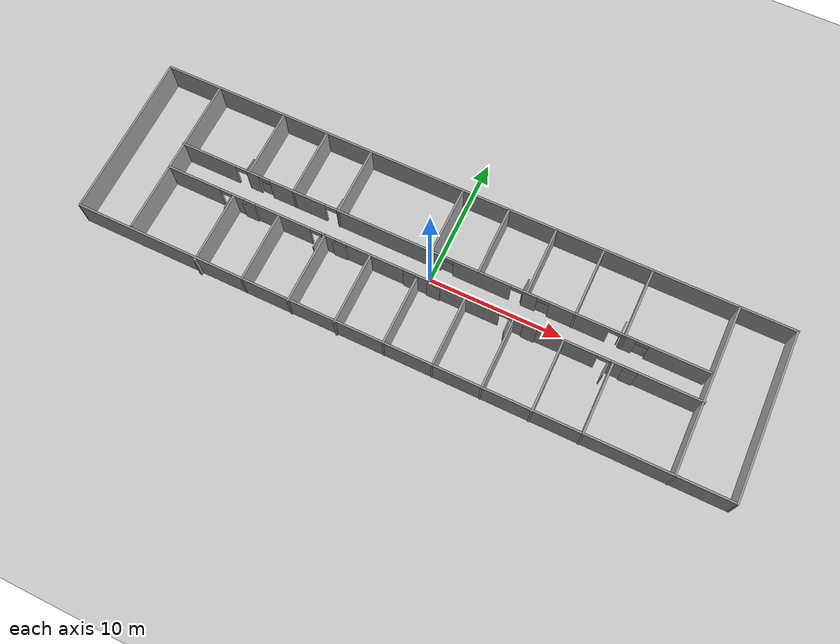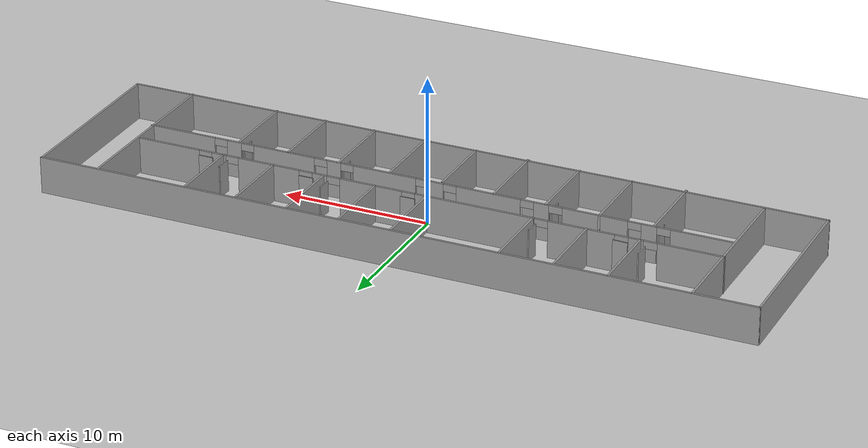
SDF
<sdf version="1.6">
 <world name="default">
  <light name="sun" type="directional">
   <cast_shadows>0</cast_shadows>
   <pose>0 0 10 0 -0 0</pose>
   <diffuse>0.8 0.8 0.8 1</diffuse>
   <specular>0.1 0.1 0.1 1</specular>
   <attenuation>
    <range>1000</range>
    <constant>0.9</constant>
    <linear>0.01</linear>
    <quadratic>0.001</quadratic>
   </attenuation>
   <direction>-0.5 0.5 -1</direction>
  </light>
  <model name="ground_plane">
   <static>1</static>
   <link name="link">
    <collision name="collision">
     <geometry><plane><normal>0 0 1</normal><size>100 100</size></plane></geometry>
     <surface><friction><ode><mu>100</mu><mu2>50</mu2></ode></friction></surface>
    </collision>
    <visual name="visual">
     <cast_shadows>0</cast_shadows>
     <geometry><plane><normal>0 0 1</normal><size>100 100</size></plane></geometry>
     <material>
      <script><uri>file://media/materials/scripts/gazebo.material</uri><name>Gazebo/Grey</name></script>
     </material>
    </visual>
   </link>
  </model>
  <gravity>0 0 -9.8</gravity>
  <magnetic_field>6e-06 2.3e-05 -4.2e-05</magnetic_field>
  <atmosphere type="adiabatic"/>
  <physics name="default_physics" default="0" type="ode">
   <max_step_size>0.001</max_step_size>
   <real_time_factor>1</real_time_factor>
   <real_time_update_rate>1000</real_time_update_rate>
  </physics>
  <scene><ambient>0.4 0.4 0.4 1</ambient><background>0.7 0.7 0.7 1</background><shadows>0</shadows></scene>
  <spherical_coordinates>
   <surface_model>EARTH_WGS84</surface_model>
   <latitude_deg>0</latitude_deg>
   <longitude_deg>0</longitude_deg>
   <elevation>0</elevation>
   <heading_deg>0</heading_deg>
  </spherical_coordinates>
  <model name="verdieping_v1">
   <pose>0.00297 -0.12364 0 0 -0 0</pose>
   <link name="Wall_11">
    <collision name="Wall_11_Collision">
     <geometry><box><size>48.75 0.15 2.5</size></box></geometry>
     <pose>0 0 1.25 0 -0 0</pose>
    </collision>
    <visual name="Wall_11_Visual">
     <pose>0 0 1.25 0 -0 0</pose>
     <geometry><box><size>48.75 0.15 2.5</size></box></geometry>
     <material>
      <script><uri>file://media/materials/scripts/gazebo.material</uri><name>Gazebo/Grey</name></script>
      <ambient>1 1 1 1</ambient>
     </material>
    </visual>
    <pose>-0.020228 6.39198 0 0 -0 0</pose>
   </link>
   <link name="Wall_12">
    <collision name="Wall_12_Collision">
     <geometry><box><size>12.7101 0.15 2.5</size></box></geometry>
     <pose>0 0 1.25 0 -0 0</pose>
    </collision>
    <visual name="Wall_12_Visual">
     <pose>0 0 1.25 0 -0 0</pose>
     <geometry><box><size>12.7101 0.15 2.5</size></box></geometry>
     <material>
      <script><uri>file://media/materials/scripts/gazebo.material</uri><name>Gazebo/Grey</name></script>
      <ambient>1 1 1 1</ambient>
     </material>
    </visual>
    <pose>24.3 0.071753 0 0 0 -1.56113</pose>
   </link>
   <link name="Wall_14">
    <collision name="Wall_14_Collision">
     <geometry><box><size>48.75 0.15 2.5</size></box></geometry>
     <pose>0 0 1.25 0 -0 0</pose>
    </collision>
    <visual name="Wall_14_Visual">
     <pose>0 0 1.25 0 -0 0</pose>
     <geometry><box><size>48.75 0.15 2.5</size></box></geometry>
     <material>
      <script><uri>file://media/materials/scripts/gazebo.material</uri><name>Gazebo/Grey</name></script>
      <ambient>1 1 1 1</ambient>
     </material>
    </visual>
    <pose>0.060683 -6.20802 0 0 -0 3.14159</pose>
   </link>
   <link name="Wall_15">
    <collision name="Wall_15_Collision">
     <geometry><box><size>12.7101 0.15 2.5</size></box></geometry>
     <pose>0 0 1.25 0 -0 0</pose>
    </collision>
    <visual name="Wall_15_Visual">
     <pose>0 0 1.25 0 -0 0</pose>
     <geometry><box><size>12.7101 0.15 2.5</size></box></geometry>
     <material>
      <script><uri>file://media/materials/scripts/gazebo.material</uri><name>Gazebo/Grey</name></script>
      <ambient>1 1 1 1</ambient>
     </material>
    </visual>
    <pose>-24.3 0.071753 0 0 -0 1.58046</pose>
   </link>
   <link name="Wall_17">
    <collision name="Wall_17_Collision">
     <geometry><box><size>12.5 0.15 2.5</size></box></geometry>
     <pose>0 0 1.25 0 -0 0</pose>
    </collision>
    <visual name="Wall_17_Visual">
     <pose>0 0 1.25 0 -0 0</pose>
     <geometry><box><size>12.5 0.15 2.5</size></box></geometry>
     <material>
      <script><uri>file://media/materials/scripts/gazebo.material</uri><name>Gazebo/Grey</name></script>
      <ambient>1 1 1 1</ambient>
     </material>
    </visual>
    <pose>-20.1128 0.176526 0 0 0 -1.5708</pose>
   </link>
   <link name="Wall_19">
    <collision name="Wall_19_Collision">
     <geometry><box><size>12.75 0.15 2.5</size></box></geometry>
     <pose>0 0 1.25 0 -0 0</pose>
    </collision>
    <visual name="Wall_19_Visual">
     <pose>0 0 1.25 0 -0 0</pose>
     <geometry><box><size>12.75 0.15 2.5</size></box></geometry>
     <material>
      <script><uri>file://media/materials/scripts/gazebo.material</uri><name>Gazebo/Grey</name></script>
      <ambient>1 1 1 1</ambient>
     </material>
    </visual>
    <pose>20.1809 0.051526 0 0 0 -1.5708</pose>
   </link>
   <link name="Wall_21">
    <pose>-0.103304 1.17321 0 0 -0 0</pose>
    <visual name="Wall_21_Visual_0">
     <pose>-17.9477 0 1.25 0 -0 0</pose>
     <geometry><box><size>4.35455 0.15 2.5</size></box></geometry>
     <material>
      <script><uri>file://media/materials/scripts/gazebo.material</uri><name>Gazebo/Grey</name></script>
      <ambient>1 1 1 1</ambient>
     </material>
    </visual>
    <collision name="Wall_21_Collision_0">
     <geometry><box><size>4.35455 0.15 2.5</size></box></geometry>
     <pose>-17.9477 0 1.25 0 -0 0</pose>
    </collision>
    <visual name="Wall_21_Visual_1">
     <pose>-14.3722 0 1.25 0 -0 0</pose>
     <geometry><box><size>0.996594 0.15 2.5</size></box></geometry>
     <material>
      <script><uri>file://media/materials/scripts/gazebo.material</uri><name>Gazebo/Grey</name></script>
      <ambient>1 1 1 1</ambient>
     </material>
    </visual>
    <collision name="Wall_21_Collision_1">
     <geometry><box><size>0.996594 0.15 2.5</size></box></geometry>
     <pose>-14.3722 0 1.25 0 -0 0</pose>
    </collision>
    <visual name="Wall_21_Visual_2">
     <pose>-10.7625 0 1.25 0 -0 0</pose>
     <geometry><box><size>4.4227 0.15 2.5</size></box></geometry>
     <material>
      <script><uri>file://media/materials/scripts/gazebo.material</uri><name>Gazebo/Grey</name></script>
      <ambient>1 1 1 1</ambient>
     </material>
    </visual>
    <collision name="Wall_21_Collision_2">
     <geometry><box><size>4.4227 0.15 2.5</size></box></geometry>
     <pose>-10.7625 0 1.25 0 -0 0</pose>
    </collision>
    <visual name="Wall_21_Visual_3">
     <pose>-3.5738 0 1.25 0 -0 0</pose>
     <geometry><box><size>8.15471 0.15 2.5</size></box></geometry>
     <material>
      <script><uri>file://media/materials/scripts/gazebo.material</uri><name>Gazebo/Grey</name></script>
      <ambient>1 1 1 1</ambient>
     </material>
    </visual>
    <collision name="Wall_21_Collision_3">
     <geometry><box><size>8.15471 0.15 2.5</size></box></geometry>
     <pose>-3.5738 0 1.25 0 -0 0</pose>
    </collision>
    <visual name="Wall_21_Visual_4">
     <pose>3.55372 0 1.25 0 -0 0</pose>
     <geometry><box><size>4.30034 0.15 2.5</size></box></geometry>
     <material>
      <script><uri>file://media/materials/scripts/gazebo.material</uri><name>Gazebo/Grey</name></script>
      <ambient>1 1 1 1</ambient>
     </material>
    </visual>
    <collision name="Wall_21_Collision_4">
     <geometry><box><size>4.30034 0.15 2.5</size></box></geometry>
     <pose>3.55372 0 1.25 0 -0 0</pose>
    </collision>
    <visual name="Wall_21_Visual_5">
     <pose>7.13278 0 1.25 0 -0 0</pose>
     <geometry><box><size>1.05777 0.15 2.5</size></box></geometry>
     <material>
      <script><uri>file://media/materials/scripts/gazebo.material</uri><name>Gazebo/Grey</name></script>
      <ambient>1 1 1 1</ambient>
     </material>
    </visual>
    <collision name="Wall_21_Collision_5">
     <geometry><box><size>1.05777 0.15 2.5</size></box></geometry>
     <pose>7.13278 0 1.25 0 -0 0</pose>
    </collision>
    <visual name="Wall_21_Visual_6">
     <pose>10.7424 0 1.25 0 -0 0</pose>
     <geometry><box><size>4.36152 0.15 2.5</size></box></geometry>
     <material>
      <script><uri>file://media/materials/scripts/gazebo.material</uri><name>Gazebo/Grey</name></script>
      <ambient>1 1 1 1</ambient>
     </material>
    </visual>
    <collision name="Wall_21_Collision_6">
     <geometry><box><size>4.36152 0.15 2.5</size></box></geometry>
     <pose>10.7424 0 1.25 0 -0 0</pose>
    </collision>
    <visual name="Wall_21_Visual_7">
     <pose>14.3368 0 1.25 0 -0 0</pose>
     <geometry><box><size>1.02718 0.15 2.5</size></box></geometry>
     <material>
      <script><uri>file://media/materials/scripts/gazebo.material</uri><name>Gazebo/Grey</name></script>
      <ambient>1 1 1 1</ambient>
     </material>
    </visual>
    <collision name="Wall_21_Collision_7">
     <geometry><box><size>1.02718 0.15 2.5</size></box></geometry>
     <pose>14.3368 0 1.25 0 -0 0</pose>
    </collision>
    <visual name="Wall_21_Visual_8">
     <pose>17.9377 0 1.25 0 -0 0</pose>
     <geometry><box><size>4.37463 0.15 2.5</size></box></geometry>
     <material>
      <script><uri>file://media/materials/scripts/gazebo.material</uri><name>Gazebo/Grey</name></script>
      <ambient>1 1 1 1</ambient>
     </material>
    </visual>
    <collision name="Wall_21_Collision_8">
     <geometry><box><size>4.37463 0.15 2.5</size></box></geometry>
     <pose>17.9377 0 1.25 0 -0 0</pose>
    </collision>
    <visual name="Wall_21_Visual_9">
     <pose>-15.3204 0 2.25 0 -0 0</pose>
     <geometry><box><size>0.9 0.15 0.5</size></box></geometry>
     <material>
      <script><uri>file://media/materials/scripts/gazebo.material</uri><name>Gazebo/Grey</name></script>
      <ambient>1 1 1 1</ambient>
     </material>
    </visual>
    <collision name="Wall_21_Collision_9">
     <geometry><box><size>0.9 0.15 0.5</size></box></geometry>
     <pose>-15.3204 0 2.25 0 -0 0</pose>
    </collision>
    <visual name="Wall_21_Visual_10">
     <pose>-13.4239 0 2.25 0 -0 0</pose>
     <geometry><box><size>0.9 0.15 0.5</size></box></geometry>
     <material>
      <script><uri>file://media/materials/scripts/gazebo.material</uri><name>Gazebo/Grey</name></script>
      <ambient>1 1 1 1</ambient>
     </material>
    </visual>
    <collision name="Wall_21_Collision_10">
     <geometry><box><size>0.9 0.15 0.5</size></box></geometry>
     <pose>-13.4239 0 2.25 0 -0 0</pose>
    </collision>
    <visual name="Wall_21_Visual_11">
     <pose>-8.10116 0 2.25 0 -0 0</pose>
     <geometry><box><size>0.9 0.15 0.5</size></box></geometry>
     <material>
      <script><uri>file://media/materials/scripts/gazebo.material</uri><name>Gazebo/Grey</name></script>
      <ambient>1 1 1 1</ambient>
     </material>
    </visual>
    <collision name="Wall_21_Collision_11">
     <geometry><box><size>0.9 0.15 0.5</size></box></geometry>
     <pose>-8.10116 0 2.25 0 -0 0</pose>
    </collision>
    <visual name="Wall_21_Visual_12">
     <pose>0.953552 0 2.25 0 -0 0</pose>
     <geometry><box><size>0.9 0.15 0.5</size></box></geometry>
     <material>
      <script><uri>file://media/materials/scripts/gazebo.material</uri><name>Gazebo/Grey</name></script>
      <ambient>1 1 1 1</ambient>
     </material>
    </visual>
    <collision name="Wall_21_Collision_12">
     <geometry><box><size>0.9 0.15 0.5</size></box></geometry>
     <pose>0.953552 0 2.25 0 -0 0</pose>
    </collision>
    <visual name="Wall_21_Visual_13">
     <pose>6.15389 0 2.25 0 -0 0</pose>
     <geometry><box><size>0.9 0.15 0.5</size></box></geometry>
     <material>
      <script><uri>file://media/materials/scripts/gazebo.material</uri><name>Gazebo/Grey</name></script>
      <ambient>1 1 1 1</ambient>
     </material>
    </visual>
    <collision name="Wall_21_Collision_13">
     <geometry><box><size>0.9 0.15 0.5</size></box></geometry>
     <pose>6.15389 0 2.25 0 -0 0</pose>
    </collision>
    <visual name="Wall_21_Visual_14">
     <pose>8.11167 0 2.25 0 -0 0</pose>
     <geometry><box><size>0.9 0.15 0.5</size></box></geometry>
     <material>
      <script><uri>file://media/materials/scripts/gazebo.material</uri><name>Gazebo/Grey</name></script>
      <ambient>1 1 1 1</ambient>
     </material>
    </visual>
    <collision name="Wall_21_Collision_14">
     <geometry><box><size>0.9 0.15 0.5</size></box></geometry>
     <pose>8.11167 0 2.25 0 -0 0</pose>
    </collision>
    <visual name="Wall_21_Visual_15">
     <pose>13.3732 0 2.25 0 -0 0</pose>
     <geometry><box><size>0.9 0.15 0.5</size></box></geometry>
     <material>
      <script><uri>file://media/materials/scripts/gazebo.material</uri><name>Gazebo/Grey</name></script>
      <ambient>1 1 1 1</ambient>
     </material>
    </visual>
    <collision name="Wall_21_Collision_15">
     <geometry><box><size>0.9 0.15 0.5</size></box></geometry>
     <pose>13.3732 0 2.25 0 -0 0</pose>
    </collision>
    <visual name="Wall_21_Visual_16">
     <pose>15.3004 0 2.25 0 -0 0</pose>
     <geometry><box><size>0.9 0.15 0.5</size></box></geometry>
     <material>
      <script><uri>file://media/materials/scripts/gazebo.material</uri><name>Gazebo/Grey</name></script>
      <ambient>1 1 1 1</ambient>
     </material>
    </visual>
    <collision name="Wall_21_Collision_16">
     <geometry><box><size>0.9 0.15 0.5</size></box></geometry>
     <pose>15.3004 0 2.25 0 -0 0</pose>
    </collision>
   </link>
   <link name="Wall_23">
    <pose>0.086818 -0.890023 0 0 -0 3.14159</pose>
    <visual name="Wall_23_Visual_0">
     <pose>-17.8898 0 1.25 0 -0 0</pose>
     <geometry><box><size>4.72034 0.15 2.5</size></box></geometry>
     <material>
      <script><uri>file://media/materials/scripts/gazebo.material</uri><name>Gazebo/Grey</name></script>
      <ambient>1 1 1 1</ambient>
     </material>
    </visual>
    <collision name="Wall_23_Collision_0">
     <geometry><box><size>4.72034 0.15 2.5</size></box></geometry>
     <pose>-17.8898 0 1.25 0 -0 0</pose>
    </collision>
    <visual name="Wall_23_Visual_1">
     <pose>-14.1161 0 1.25 0 -0 0</pose>
     <geometry><box><size>1.02719 0.15 2.5</size></box></geometry>
     <material>
      <script><uri>file://media/materials/scripts/gazebo.material</uri><name>Gazebo/Grey</name></script>
      <ambient>1 1 1 1</ambient>
     </material>
    </visual>
    <collision name="Wall_23_Collision_1">
     <geometry><box><size>1.02719 0.15 2.5</size></box></geometry>
     <pose>-14.1161 0 1.25 0 -0 0</pose>
    </collision>
    <visual name="Wall_23_Visual_2">
     <pose>-10.5217 0 1.25 0 -0 0</pose>
     <geometry><box><size>4.36152 0.15 2.5</size></box></geometry>
     <material>
      <script><uri>file://media/materials/scripts/gazebo.material</uri><name>Gazebo/Grey</name></script>
      <ambient>1 1 1 1</ambient>
     </material>
    </visual>
    <collision name="Wall_23_Collision_2">
     <geometry><box><size>4.36152 0.15 2.5</size></box></geometry>
     <pose>-10.5217 0 1.25 0 -0 0</pose>
    </collision>
    <visual name="Wall_23_Visual_3">
     <pose>-6.95795 0 1.25 0 -0 0</pose>
     <geometry><box><size>0.966004 0.15 2.5</size></box></geometry>
     <material>
      <script><uri>file://media/materials/scripts/gazebo.material</uri><name>Gazebo/Grey</name></script>
      <ambient>1 1 1 1</ambient>
     </material>
    </visual>
    <collision name="Wall_23_Collision_3">
     <geometry><box><size>0.966004 0.15 2.5</size></box></geometry>
     <pose>-6.95795 0 1.25 0 -0 0</pose>
    </collision>
    <visual name="Wall_23_Visual_4">
     <pose>-3.37889 0 1.25 0 -0 0</pose>
     <geometry><box><size>4.39211 0.15 2.5</size></box></geometry>
     <material>
      <script><uri>file://media/materials/scripts/gazebo.material</uri><name>Gazebo/Grey</name></script>
      <ambient>1 1 1 1</ambient>
     </material>
    </visual>
    <collision name="Wall_23_Collision_4">
     <geometry><box><size>4.39211 0.15 2.5</size></box></geometry>
     <pose>-3.37889 0 1.25 0 -0 0</pose>
    </collision>
    <visual name="Wall_23_Visual_5">
     <pose>0.215457 0 1.25 0 -0 0</pose>
     <geometry><box><size>0.996594 0.15 2.5</size></box></geometry>
     <material>
      <script><uri>file://media/materials/scripts/gazebo.material</uri><name>Gazebo/Grey</name></script>
      <ambient>1 1 1 1</ambient>
     </material>
    </visual>
    <collision name="Wall_23_Collision_5">
     <geometry><box><size>0.996594 0.15 2.5</size></box></geometry>
     <pose>0.215457 0 1.25 0 -0 0</pose>
    </collision>
    <visual name="Wall_23_Visual_6">
     <pose>3.80981 0 1.25 0 -0 0</pose>
     <geometry><box><size>4.39211 0.15 2.5</size></box></geometry>
     <material>
      <script><uri>file://media/materials/scripts/gazebo.material</uri><name>Gazebo/Grey</name></script>
      <ambient>1 1 1 1</ambient>
     </material>
    </visual>
    <collision name="Wall_23_Collision_6">
     <geometry><box><size>4.39211 0.15 2.5</size></box></geometry>
     <pose>3.80981 0 1.25 0 -0 0</pose>
    </collision>
    <visual name="Wall_23_Visual_7">
     <pose>7.41946 0 1.25 0 -0 0</pose>
     <geometry><box><size>1.02719 0.15 2.5</size></box></geometry>
     <material>
      <script><uri>file://media/materials/scripts/gazebo.material</uri><name>Gazebo/Grey</name></script>
      <ambient>1 1 1 1</ambient>
     </material>
    </visual>
    <collision name="Wall_23_Collision_7">
     <geometry><box><size>1.02719 0.15 2.5</size></box></geometry>
     <pose>7.41946 0 1.25 0 -0 0</pose>
    </collision>
    <visual name="Wall_23_Visual_8">
     <pose>11.0138 0 1.25 0 -0 0</pose>
     <geometry><box><size>4.36152 0.15 2.5</size></box></geometry>
     <material>
      <script><uri>file://media/materials/scripts/gazebo.material</uri><name>Gazebo/Grey</name></script>
      <ambient>1 1 1 1</ambient>
     </material>
    </visual>
    <collision name="Wall_23_Collision_8">
     <geometry><box><size>4.36152 0.15 2.5</size></box></geometry>
     <pose>11.0138 0 1.25 0 -0 0</pose>
    </collision>
    <visual name="Wall_23_Visual_9">
     <pose>14.6082 0 1.25 0 -0 0</pose>
     <geometry><box><size>1.02718 0.15 2.5</size></box></geometry>
     <material>
      <script><uri>file://media/materials/scripts/gazebo.material</uri><name>Gazebo/Grey</name></script>
      <ambient>1 1 1 1</ambient>
     </material>
    </visual>
    <collision name="Wall_23_Collision_9">
     <geometry><box><size>1.02718 0.15 2.5</size></box></geometry>
     <pose>14.6082 0 1.25 0 -0 0</pose>
    </collision>
    <visual name="Wall_23_Visual_10">
     <pose>18.1359 0 1.25 0 -0 0</pose>
     <geometry><box><size>4.22825 0.15 2.5</size></box></geometry>
     <material>
      <script><uri>file://media/materials/scripts/gazebo.material</uri><name>Gazebo/Grey</name></script>
      <ambient>1 1 1 1</ambient>
     </material>
    </visual>
    <collision name="Wall_23_Collision_10">
     <geometry><box><size>4.22825 0.15 2.5</size></box></geometry>
     <pose>18.1359 0 1.25 0 -0 0</pose>
    </collision>
    <visual name="Wall_23_Visual_11">
     <pose>-15.0797 0 2.25 0 -0 0</pose>
     <geometry><box><size>0.9 0.15 0.5</size></box></geometry>
     <material>
      <script><uri>file://media/materials/scripts/gazebo.material</uri><name>Gazebo/Grey</name></script>
      <ambient>1 1 1 1</ambient>
     </material>
    </visual>
    <collision name="Wall_23_Collision_11">
     <geometry><box><size>0.9 0.15 0.5</size></box></geometry>
     <pose>-15.0797 0 2.25 0 -0 0</pose>
    </collision>
    <visual name="Wall_23_Visual_12">
     <pose>-13.1525 0 2.25 0 -0 0</pose>
     <geometry><box><size>0.9 0.15 0.5</size></box></geometry>
     <material>
      <script><uri>file://media/materials/scripts/gazebo.material</uri><name>Gazebo/Grey</name></script>
      <ambient>1 1 1 1</ambient>
     </material>
    </visual>
    <collision name="Wall_23_Collision_12">
     <geometry><box><size>0.9 0.15 0.5</size></box></geometry>
     <pose>-13.1525 0 2.25 0 -0 0</pose>
    </collision>
    <visual name="Wall_23_Visual_13">
     <pose>-7.89095 0 2.25 0 -0 0</pose>
     <geometry><box><size>0.9 0.15 0.5</size></box></geometry>
     <material>
      <script><uri>file://media/materials/scripts/gazebo.material</uri><name>Gazebo/Grey</name></script>
      <ambient>1 1 1 1</ambient>
     </material>
    </visual>
    <collision name="Wall_23_Collision_13">
     <geometry><box><size>0.9 0.15 0.5</size></box></geometry>
     <pose>-7.89095 0 2.25 0 -0 0</pose>
    </collision>
    <visual name="Wall_23_Visual_14">
     <pose>-6.02495 0 2.25 0 -0 0</pose>
     <geometry><box><size>0.9 0.15 0.5</size></box></geometry>
     <material>
      <script><uri>file://media/materials/scripts/gazebo.material</uri><name>Gazebo/Grey</name></script>
      <ambient>1 1 1 1</ambient>
     </material>
    </visual>
    <collision name="Wall_23_Collision_14">
     <geometry><box><size>0.9 0.15 0.5</size></box></geometry>
     <pose>-6.02495 0 2.25 0 -0 0</pose>
    </collision>
    <visual name="Wall_23_Visual_15">
     <pose>-0.73284 0 2.25 0 -0 0</pose>
     <geometry><box><size>0.9 0.15 0.5</size></box></geometry>
     <material>
      <script><uri>file://media/materials/scripts/gazebo.material</uri><name>Gazebo/Grey</name></script>
      <ambient>1 1 1 1</ambient>
     </material>
    </visual>
    <collision name="Wall_23_Collision_15">
     <geometry><box><size>0.9 0.15 0.5</size></box></geometry>
     <pose>-0.73284 0 2.25 0 -0 0</pose>
    </collision>
    <visual name="Wall_23_Visual_16">
     <pose>1.16375 0 2.25 0 -0 0</pose>
     <geometry><box><size>0.9 0.15 0.5</size></box></geometry>
     <material>
      <script><uri>file://media/materials/scripts/gazebo.material</uri><name>Gazebo/Grey</name></script>
      <ambient>1 1 1 1</ambient>
     </material>
    </visual>
    <collision name="Wall_23_Collision_16">
     <geometry><box><size>0.9 0.15 0.5</size></box></geometry>
     <pose>1.16375 0 2.25 0 -0 0</pose>
    </collision>
    <visual name="Wall_23_Visual_17">
     <pose>6.45586 0 2.25 0 -0 0</pose>
     <geometry><box><size>0.9 0.15 0.5</size></box></geometry>
     <material>
      <script><uri>file://media/materials/scripts/gazebo.material</uri><name>Gazebo/Grey</name></script>
      <ambient>1 1 1 1</ambient>
     </material>
    </visual>
    <collision name="Wall_23_Collision_17">
     <geometry><box><size>0.9 0.15 0.5</size></box></geometry>
     <pose>6.45586 0 2.25 0 -0 0</pose>
    </collision>
    <visual name="Wall_23_Visual_18">
     <pose>8.38305 0 2.25 0 -0 0</pose>
     <geometry><box><size>0.9 0.15 0.5</size></box></geometry>
     <material>
      <script><uri>file://media/materials/scripts/gazebo.material</uri><name>Gazebo/Grey</name></script>
      <ambient>1 1 1 1</ambient>
     </material>
    </visual>
    <collision name="Wall_23_Collision_18">
     <geometry><box><size>0.9 0.15 0.5</size></box></geometry>
     <pose>8.38305 0 2.25 0 -0 0</pose>
    </collision>
    <visual name="Wall_23_Visual_19">
     <pose>13.6446 0 2.25 0 -0 0</pose>
     <geometry><box><size>0.9 0.15 0.5</size></box></geometry>
     <material>
      <script><uri>file://media/materials/scripts/gazebo.material</uri><name>Gazebo/Grey</name></script>
      <ambient>1 1 1 1</ambient>
     </material>
    </visual>
    <collision name="Wall_23_Collision_19">
     <geometry><box><size>0.9 0.15 0.5</size></box></geometry>
     <pose>13.6446 0 2.25 0 -0 0</pose>
    </collision>
    <visual name="Wall_23_Visual_20">
     <pose>15.5718 0 2.25 0 -0 0</pose>
     <geometry><box><size>0.9 0.15 0.5</size></box></geometry>
     <material>
      <script><uri>file://media/materials/scripts/gazebo.material</uri><name>Gazebo/Grey</name></script>
      <ambient>1 1 1 1</ambient>
     </material>
    </visual>
    <collision name="Wall_23_Collision_20">
     <geometry><box><size>0.9 0.15 0.5</size></box></geometry>
     <pose>15.5718 0 2.25 0 -0 0</pose>
    </collision>
   </link>
   <link name="Wall_25">
    <collision name="Wall_25_Collision">
     <geometry><box><size>5.5 0.15 2.5</size></box></geometry>
     <pose>0 0 1.25 0 -0 0</pose>
    </collision>
    <visual name="Wall_25_Visual">
     <pose>0 0 1.25 0 -0 0</pose>
     <geometry><box><size>5.5 0.15 2.5</size></box></geometry>
     <material>
      <script><uri>file://media/materials/scripts/gazebo.material</uri><name>Gazebo/Grey</name></script>
      <ambient>1 1 1 1</ambient>
     </material>
    </visual>
    <pose>-14.8132 -3.71698 0 0 -0 1.5708</pose>
   </link>
   <link name="Wall_27">
    <collision name="Wall_27_Collision">
     <geometry><box><size>5.5 0.15 2.5</size></box></geometry>
     <pose>0 0 1.25 0 -0 0</pose>
    </collision>
    <visual name="Wall_27_Visual">
     <pose>0 0 1.25 0 -0 0</pose>
     <geometry><box><size>5.5 0.15 2.5</size></box></geometry>
     <material>
      <script><uri>file://media/materials/scripts/gazebo.material</uri><name>Gazebo/Grey</name></script>
      <ambient>1 1 1 1</ambient>
     </material>
    </visual>
    <pose>-11.2126 -3.55516 0 0 -0 1.5708</pose>
   </link>
   <link name="Wall_29">
    <collision name="Wall_29_Collision">
     <geometry><box><size>5.5 0.15 2.5</size></box></geometry>
     <pose>0 0 1.25 0 -0 0</pose>
    </collision>
    <visual name="Wall_29_Visual">
     <pose>0 0 1.25 0 -0 0</pose>
     <geometry><box><size>5.5 0.15 2.5</size></box></geometry>
     <material>
      <script><uri>file://media/materials/scripts/gazebo.material</uri><name>Gazebo/Grey</name></script>
      <ambient>1 1 1 1</ambient>
     </material>
    </visual>
    <pose>-7.61207 -3.59561 0 0 -0 1.5708</pose>
   </link>
   <link name="Wall_31">
    <collision name="Wall_31_Collision">
     <geometry><box><size>5.25 0.15 2.5</size></box></geometry>
     <pose>0 0 1.25 0 -0 0</pose>
    </collision>
    <visual name="Wall_31_Visual">
     <pose>0 0 1.25 0 -0 0</pose>
     <geometry><box><size>5.25 0.15 2.5</size></box></geometry>
     <material>
      <script><uri>file://media/materials/scripts/gazebo.material</uri><name>Gazebo/Grey</name></script>
      <ambient>1 1 1 1</ambient>
     </material>
    </visual>
    <pose>-0.451438 -3.68016 0 0 -0 1.5708</pose>
   </link>
   <link name="Wall_33">
    <collision name="Wall_33_Collision">
     <geometry><box><size>5.25 0.15 2.5</size></box></geometry>
     <pose>0 0 1.25 0 -0 0</pose>
    </collision>
    <visual name="Wall_33_Visual">
     <pose>0 0 1.25 0 -0 0</pose>
     <geometry><box><size>5.25 0.15 2.5</size></box></geometry>
     <material>
      <script><uri>file://media/materials/scripts/gazebo.material</uri><name>Gazebo/Grey</name></script>
      <ambient>1 1 1 1</ambient>
     </material>
    </visual>
    <pose>-0.451438 -3.68016 0 0 -0 1.5708</pose>
   </link>
   <link name="Wall_39">
    <collision name="Wall_39_Collision">
     <geometry><box><size>5.5 0.15 2.5</size></box></geometry>
     <pose>0 0 1.25 0 -0 0</pose>
    </collision>
    <visual name="Wall_39_Visual">
     <pose>0 0 1.25 0 -0 0</pose>
     <geometry><box><size>5.5 0.15 2.5</size></box></geometry>
     <material>
      <script><uri>file://media/materials/scripts/gazebo.material</uri><name>Gazebo/Grey</name></script>
      <ambient>1 1 1 1</ambient>
     </material>
    </visual>
    <pose>-4.05784 -3.63872 0 0 -0 1.5708</pose>
   </link>
   <link name="Wall_41">
    <collision name="Wall_41_Collision">
     <geometry><box><size>5.5 0.15 2.5</size></box></geometry>
     <pose>0 0 1.25 0 -0 0</pose>
    </collision>
    <visual name="Wall_41_Visual">
     <pose>0 0 1.25 0 -0 0</pose>
     <geometry><box><size>5.5 0.15 2.5</size></box></geometry>
     <material>
      <script><uri>file://media/materials/scripts/gazebo.material</uri><name>Gazebo/Grey</name></script>
      <ambient>1 1 1 1</ambient>
     </material>
    </visual>
    <pose>3.15647 -3.56652 0 0 0 -1.5708</pose>
   </link>
   <link name="Wall_43">
    <collision name="Wall_43_Collision">
     <geometry><box><size>5.5 0.15 2.5</size></box></geometry>
     <pose>0 0 1.25 0 -0 0</pose>
    </collision>
    <visual name="Wall_43_Visual">
     <pose>0 0 1.25 0 -0 0</pose>
     <geometry><box><size>5.5 0.15 2.5</size></box></geometry>
     <material>
      <script><uri>file://media/materials/scripts/gazebo.material</uri><name>Gazebo/Grey</name></script>
      <ambient>1 1 1 1</ambient>
     </material>
    </visual>
    <pose>6.73053 -3.56652 0 0 0 -1.5708</pose>
   </link>
   <link name="Wall_46">
    <collision name="Wall_46_Collision">
     <geometry><box><size>5.5 0.15 2.5</size></box></geometry>
     <pose>0 0 1.25 0 -0 0</pose>
    </collision>
    <visual name="Wall_46_Visual">
     <pose>0 0 1.25 0 -0 0</pose>
     <geometry><box><size>5.5 0.15 2.5</size></box></geometry>
     <material>
      <script><uri>file://media/materials/scripts/gazebo.material</uri><name>Gazebo/Grey</name></script>
      <ambient>1 1 1 1</ambient>
     </material>
    </visual>
    <pose>10.3333 -3.58804 0 0 0 -1.5708</pose>
   </link>
   <link name="Wall_49">
    <collision name="Wall_49_Collision">
     <geometry><box><size>5.5 0.15 2.5</size></box></geometry>
     <pose>0 0 1.25 0 -0 0</pose>
    </collision>
    <visual name="Wall_49_Visual">
     <pose>0 0 1.25 0 -0 0</pose>
     <geometry><box><size>5.5 0.15 2.5</size></box></geometry>
     <material>
      <script><uri>file://media/materials/scripts/gazebo.material</uri><name>Gazebo/Grey</name></script>
      <ambient>1 1 1 1</ambient>
     </material>
    </visual>
    <pose>13.9013 -3.58804 0 0 0 -1.5708</pose>
   </link>
   <link name="Wall_55">
    <collision name="Wall_55_Collision">
     <geometry><box><size>5.25 0.15 2.5</size></box></geometry>
     <pose>0 0 1.25 0 -0 0</pose>
    </collision>
    <visual name="Wall_55_Visual">
     <pose>0 0 1.25 0 -0 0</pose>
     <geometry><box><size>5.25 0.15 2.5</size></box></geometry>
     <material>
      <script><uri>file://media/materials/scripts/gazebo.material</uri><name>Gazebo/Grey</name></script>
      <ambient>1 1 1 1</ambient>
     </material>
    </visual>
    <pose>13.9365 3.714 0 0 -0 1.5708</pose>
   </link>
   <link name="Wall_57">
    <collision name="Wall_57_Collision">
     <geometry><box><size>5.25 0.15 2.5</size></box></geometry>
     <pose>0 0 1.25 0 -0 0</pose>
    </collision>
    <visual name="Wall_57_Visual">
     <pose>0 0 1.25 0 -0 0</pose>
     <geometry><box><size>5.25 0.15 2.5</size></box></geometry>
     <material>
      <script><uri>file://media/materials/scripts/gazebo.material</uri><name>Gazebo/Grey</name></script>
      <ambient>1 1 1 1</ambient>
     </material>
    </visual>
    <pose>10.3472 3.68359 0 0 -0 1.5708</pose>
   </link>
   <link name="Wall_59">
    <collision name="Wall_59_Collision">
     <geometry><box><size>5.25 0.15 2.5</size></box></geometry>
     <pose>0 0 1.25 0 -0 0</pose>
    </collision>
    <visual name="Wall_59_Visual">
     <pose>0 0 1.25 0 -0 0</pose>
     <geometry><box><size>5.25 0.15 2.5</size></box></geometry>
     <material>
      <script><uri>file://media/materials/scripts/gazebo.material</uri><name>Gazebo/Grey</name></script>
      <ambient>1 1 1 1</ambient>
     </material>
    </visual>
    <pose>6.77318 3.72921 0 0 -0 1.5708</pose>
   </link>
   <link name="Wall_63">
    <collision name="Wall_63_Collision">
     <geometry><box><size>5.25 0.15 2.5</size></box></geometry>
     <pose>0 0 1.25 0 -0 0</pose>
    </collision>
    <visual name="Wall_63_Visual">
     <pose>0 0 1.25 0 -0 0</pose>
     <geometry><box><size>5.25 0.15 2.5</size></box></geometry>
     <material>
      <script><uri>file://media/materials/scripts/gazebo.material</uri><name>Gazebo/Grey</name></script>
      <ambient>1 1 1 1</ambient>
     </material>
    </visual>
    <pose>3.1687 3.72921 0 0 -0 1.5708</pose>
   </link>
   <link name="Wall_65">
    <collision name="Wall_65_Collision">
     <geometry><box><size>5.25 0.15 2.5</size></box></geometry>
     <pose>0 0 1.25 0 -0 0</pose>
    </collision>
    <visual name="Wall_65_Visual">
     <pose>0 0 1.25 0 -0 0</pose>
     <geometry><box><size>5.25 0.15 2.5</size></box></geometry>
     <material>
      <script><uri>file://media/materials/scripts/gazebo.material</uri><name>Gazebo/Grey</name></script>
      <ambient>1 1 1 1</ambient>
     </material>
    </visual>
    <pose>-0.390145 3.6988 0 0 -0 1.5708</pose>
   </link>
   <link name="Wall_67">
    <collision name="Wall_67_Collision">
     <geometry><box><size>5.25 0.15 2.5</size></box></geometry>
     <pose>0 0 1.25 0 -0 0</pose>
    </collision>
    <visual name="Wall_67_Visual">
     <pose>0 0 1.25 0 -0 0</pose>
     <geometry><box><size>5.25 0.15 2.5</size></box></geometry>
     <material>
      <script><uri>file://media/materials/scripts/gazebo.material</uri><name>Gazebo/Grey</name></script>
      <ambient>1 1 1 1</ambient>
     </material>
    </visual>
    <pose>-7.62951 3.6988 0 0 -0 1.5708</pose>
   </link>
   <link name="Wall_69">
    <collision name="Wall_69_Collision">
     <geometry><box><size>5.25 0.15 2.5</size></box></geometry>
     <pose>0 0 1.25 0 -0 0</pose>
    </collision>
    <visual name="Wall_69_Visual">
     <pose>0 0 1.25 0 -0 0</pose>
     <geometry><box><size>5.25 0.15 2.5</size></box></geometry>
     <material>
      <script><uri>file://media/materials/scripts/gazebo.material</uri><name>Gazebo/Grey</name></script>
      <ambient>1 1 1 1</ambient>
     </material>
    </visual>
    <pose>-11.2036 3.714 0 0 -0 1.5708</pose>
   </link>
   <link name="Wall_71">
    <collision name="Wall_71_Collision">
     <geometry><box><size>5.25 0.15 2.5</size></box></geometry>
     <pose>0 0 1.25 0 -0 0</pose>
    </collision>
    <visual name="Wall_71_Visual">
     <pose>0 0 1.25 0 -0 0</pose>
     <geometry><box><size>5.25 0.15 2.5</size></box></geometry>
     <material>
      <script><uri>file://media/materials/scripts/gazebo.material</uri><name>Gazebo/Grey</name></script>
      <ambient>1 1 1 1</ambient>
     </material>
    </visual>
    <pose>-14.7472 3.77484 0 0 -0 1.5708</pose>
   </link>
   <static>1</static>
  </model>
  <model name="unit_box_0_clone_clone">
   <pose>0.775835 -1.12786 1.09503 3.14159 3e-06 -3.14149</pose>
   <link name="link">
    <inertial>
     <mass>1</mass>
     <inertia>
      <ixx>0.166667</ixx>
      <ixy>0</ixy>
      <ixz>0</ixz>
      <iyy>0.166667</iyy>
      <iyz>0</iyz>
      <izz>0.166667</izz>
     </inertia>
    </inertial>
    <collision name="collision"><geometry><box><size>1 0.077849 2.19006</size></box></geometry></collision>
    <visual name="visual">
     <geometry><box><size>1 0.077849 2.19006</size></box></geometry>
     <material>
      <script><name>Gazebo/Grey</name><uri>file://media/materials/scripts/gazebo.material</uri></script>
     </material>
    </visual>
   </link>
  </model>
  <model name="unit_box_0_clone_clone_clone">
   <pose>0.847869 1.16802 1.09503 3.14159 1e-06 3.13311</pose>
   <link name="link">
    <inertial>
     <mass>1</mass>
     <inertia>
      <ixx>0.166667</ixx>
      <ixy>0</ixy>
      <ixz>0</ixz>
      <iyy>0.166667</iyy>
      <iyz>0</iyz>
      <izz>0.166667</izz>
     </inertia>
    </inertial>
    <collision name="collision"><geometry><box><size>1 0.077849 2.19006</size></box></geometry></collision>
    <visual name="visual">
     <geometry><box><size>1 0.077849 2.19006</size></box></geometry>
     <material>
      <script><name>Gazebo/Grey</name><uri>file://media/materials/scripts/gazebo.material</uri></script>
     </material>
    </visual>
   </link>
  </model>
  <model name="unit_box_0_clone_clone_clone_clone">
   <pose>7.96104 1.16349 1.09503 3.14159 -3e-06 -3.14159</pose>
   <link name="link">
    <inertial>
     <mass>1</mass>
     <inertia>
      <ixx>0.166667</ixx>
      <ixy>0</ixy>
      <ixz>0</ixz>
      <iyy>0.166667</iyy>
      <iyz>0</iyz>
      <izz>0.166667</izz>
     </inertia>
    </inertial>
    <collision name="collision"><geometry><box><size>1 0.077849 2.19006</size></box></geometry></collision>
    <visual name="visual">
     <geometry><box><size>1 0.077849 2.19006</size></box></geometry>
     <material>
      <script><name>Gazebo/Grey</name><uri>file://media/materials/scripts/gazebo.material</uri></script>
     </material>
    </visual>
   </link>
  </model>
  <model name="unit_box_0_clone_clone_clone_clone_clone">
   <pose>7.94534 -1.13645 1.09503 -3.14159 1e-06 3.1249</pose>
   <link name="link">
    <inertial>
     <mass>1</mass>
     <inertia>
      <ixx>0.166667</ixx>
      <ixy>0</ixy>
      <ixz>0</ixz>
      <iyy>0.166667</iyy>
      <iyz>0</iyz>
      <izz>0.166667</izz>
     </inertia>
    </inertial>
    <collision name="collision"><geometry><box><size>1 0.077849 2.19006</size></box></geometry></collision>
    <visual name="visual">
     <geometry><box><size>1 0.077849 2.19006</size></box></geometry>
     <material>
      <script><name>Gazebo/Grey</name><uri>file://media/materials/scripts/gazebo.material</uri></script>
     </material>
    </visual>
   </link>
  </model>
  <model name="unit_box_0_clone_clone_clone_clone_clone_0">
   <pose>15.1479 1.16902 1.09503 -3.14159 -3e-06 3.13559</pose>
   <link name="link">
    <inertial>
     <mass>1</mass>
     <inertia>
      <ixx>0.166667</ixx>
      <ixy>0</ixy>
      <ixz>0</ixz>
      <iyy>0.166667</iyy>
      <iyz>0</iyz>
      <izz>0.166667</izz>
     </inertia>
    </inertial>
    <collision name="collision"><geometry><box><size>1 0.077849 2.19006</size></box></geometry></collision>
    <visual name="visual">
     <geometry><box><size>1 0.077849 2.19006</size></box></geometry>
     <material>
      <script><name>Gazebo/Grey</name><uri>file://media/materials/scripts/gazebo.material</uri></script>
     </material>
    </visual>
   </link>
  </model>
  <model name="unit_box_0_clone_clone_clone_clone_clone_1">
   <pose>15.1199 -1.12893 1.09523 3.13585 4e-06 -3.12862</pose>
   <link name="link">
    <inertial>
     <mass>1</mass>
     <inertia>
      <ixx>0.166667</ixx>
      <ixy>0</ixy>
      <ixz>0</ixz>
      <iyy>0.166667</iyy>
      <iyz>0</iyz>
      <izz>0.166667</izz>
     </inertia>
    </inertial>
    <collision name="collision"><geometry><box><size>1 0.077849 2.19006</size></box></geometry></collision>
    <visual name="visual">
     <geometry><box><size>1 0.077849 2.19006</size></box></geometry>
     <material>
      <script><name>Gazebo/Grey</name><uri>file://media/materials/scripts/gazebo.material</uri></script>
     </material>
    </visual>
   </link>
  </model>
  <model name="unit_box_0_clone_clone_clone_0">
   <pose>-1.02471 -1.1316 1.09503 -3.14159 -2e-06 3.14156</pose>
   <link name="link">
    <inertial>
     <mass>1</mass>
     <inertia>
      <ixx>0.166667</ixx>
      <ixy>0</ixy>
      <ixz>0</ixz>
      <iyy>0.166667</iyy>
      <iyz>0</iyz>
      <izz>0.166667</izz>
     </inertia>
    </inertial>
    <collision name="collision"><geometry><box><size>1 0.077849 2.19006</size></box></geometry></collision>
    <visual name="visual">
     <geometry><box><size>1 0.077849 2.19006</size></box></geometry>
     <material>
      <script><name>Gazebo/Grey</name><uri>file://media/materials/scripts/gazebo.material</uri></script>
     </material>
    </visual>
   </link>
  </model>
  <model name="unit_box_0_clone_clone_clone_0_clone">
   <pose>-13.6302 -1.13844 1.09503 3.14159 -1e-06 -3.14152</pose>
   <link name="link">
    <inertial>
     <mass>1</mass>
     <inertia>
      <ixx>0.166667</ixx>
      <ixy>0</ixy>
      <ixz>0</ixz>
      <iyy>0.166667</iyy>
      <iyz>0</iyz>
      <izz>0.166667</izz>
     </inertia>
    </inertial>
    <collision name="collision"><geometry><box><size>1 0.077849 2.19006</size></box></geometry></collision>
    <visual name="visual">
     <geometry><box><size>1 0.077849 2.19006</size></box></geometry>
     <material>
      <script><name>Gazebo/Grey</name><uri>file://media/materials/scripts/gazebo.material</uri></script>
     </material>
    </visual>
   </link>
  </model>
  <model name="unit_box_0_clone_clone_clone_0_clone_0">
   <pose>-13.4792 1.17804 1.09503 -3.14159 -3e-06 3.11256</pose>
   <link name="link">
    <inertial>
     <mass>1</mass>
     <inertia>
      <ixx>0.166667</ixx>
      <ixy>0</ixy>
      <ixz>0</ixz>
      <iyy>0.166667</iyy>
      <iyz>0</iyz>
      <izz>0.166667</izz>
     </inertia>
    </inertial>
    <collision name="collision"><geometry><box><size>1 0.077849 2.19006</size></box></geometry></collision>
    <visual name="visual">
     <geometry><box><size>1 0.077849 2.19006</size></box></geometry>
     <material>
      <script><name>Gazebo/Grey</name><uri>file://media/materials/scripts/gazebo.material</uri></script>
     </material>
    </visual>
   </link>
  </model>
  <model name="unit_box_0_clone_clone_clone_0_clone_0_clone">
   <pose>-6.46967 -1.13035 1.09536 3.13157 -3e-06 -3.1179</pose>
   <link name="link">
    <inertial>
     <mass>1</mass>
     <inertia>
      <ixx>0.166667</ixx>
      <ixy>0</ixy>
      <ixz>0</ixz>
      <iyy>0.166667</iyy>
      <iyz>0</iyz>
      <izz>0.166667</izz>
     </inertia>
    </inertial>
    <collision name="collision"><geometry><box><size>1 0.077849 2.19006</size></box></geometry></collision>
    <visual name="visual">
     <geometry><box><size>1 0.077849 2.19006</size></box></geometry>
     <material>
      <script><name>Gazebo/Grey</name><uri>file://media/materials/scripts/gazebo.material</uri></script>
     </material>
    </visual>
   </link>
  </model>
  <model name="unit_box_0_clone_clone_clone_clone_0">
   <pose>6.47093 1.64138 1.09503 -3.14159 1e-06 1.51803</pose>
   <link name="link">
    <inertial>
     <mass>1</mass>
     <inertia>
      <ixx>0.166667</ixx>
      <ixy>0</ixy>
      <ixz>0</ixz>
      <iyy>0.166667</iyy>
      <iyz>0</iyz>
      <izz>0.166667</izz>
     </inertia>
    </inertial>
    <collision name="collision"><geometry><box><size>1 0.077849 2.19006</size></box></geometry></collision>
    <visual name="visual">
     <geometry><box><size>1 0.077849 2.19006</size></box></geometry>
     <material>
      <script><name>Gazebo/Grey</name><uri>file://media/materials/scripts/gazebo.material</uri></script>
     </material>
    </visual>
   </link>
  </model>
  <model name="unit_box_0_clone_clone_clone_clone_0_clone">
   <pose>6.44879 -1.55358 1.11473 3.13673 -0.040895 1.59467</pose>
   <link name="link">
    <inertial>
     <mass>1</mass>
     <inertia>
      <ixx>0.166667</ixx>
      <ixy>0</ixy>
      <ixz>0</ixz>
      <iyy>0.166667</iyy>
      <iyz>0</iyz>
      <izz>0.166667</izz>
     </inertia>
    </inertial>
    <collision name="collision"><geometry><box><size>1 0.077849 2.19006</size></box></geometry></collision>
    <visual name="visual">
     <geometry><box><size>1 0.077849 2.19006</size></box></geometry>
     <material>
      <script><name>Gazebo/Grey</name><uri>file://media/materials/scripts/gazebo.material</uri></script>
     </material>
    </visual>
   </link>
  </model>
  <model name="unit_box_0_clone_clone_clone_clone_0_clone_0">
   <pose>13.6374 1.61391 1.10166 3.14128 0.013442 1.51738</pose>
   <link name="link">
    <inertial>
     <mass>1</mass>
     <inertia>
      <ixx>0.166667</ixx>
      <ixy>0</ixy>
      <ixz>0</ixz>
      <iyy>0.166667</iyy>
      <iyz>0</iyz>
      <izz>0.166667</izz>
     </inertia>
    </inertial>
    <collision name="collision"><geometry><box><size>1 0.077849 2.19006</size></box></geometry></collision>
    <visual name="visual">
     <geometry><box><size>1 0.077849 2.19006</size></box></geometry>
     <material>
      <script><name>Gazebo/Grey</name><uri>file://media/materials/scripts/gazebo.material</uri></script>
     </material>
    </visual>
   </link>
  </model>
  <model name="unit_box_0_clone_clone_clone_clone_0_clone_1">
   <pose>13.5545 -1.56133 1.11067 -3.11528 -0.031041 1.5708</pose>
   <link name="link">
    <inertial>
     <mass>1</mass>
     <inertia>
      <ixx>0.166667</ixx>
      <ixy>0</ixy>
      <ixz>0</ixz>
      <iyy>0.166667</iyy>
      <iyz>0</iyz>
      <izz>0.166667</izz>
     </inertia>
    </inertial>
    <collision name="collision"><geometry><box><size>1 0.077849 2.19006</size></box></geometry></collision>
    <visual name="visual">
     <geometry><box><size>1 0.077849 2.19006</size></box></geometry>
     <material>
      <script><name>Gazebo/Grey</name><uri>file://media/materials/scripts/gazebo.material</uri></script>
     </material>
    </visual>
   </link>
  </model>
  <model name="unit_box_0_clone_clone_clone_clone_0_clone_2">
   <pose>-7.96433 -1.58912 1.09552 -3.14131 -0.000953 1.51922</pose>
   <link name="link">
    <inertial>
     <mass>1</mass>
     <inertia>
      <ixx>0.166667</ixx>
      <ixy>0</ixy>
      <ixz>0</ixz>
      <iyy>0.166667</iyy>
      <iyz>0</iyz>
      <izz>0.166667</izz>
     </inertia>
    </inertial>
    <collision name="collision"><geometry><box><size>1 0.077849 2.19006</size></box></geometry></collision>
    <visual name="visual">
     <geometry><box><size>1 0.077849 2.19006</size></box></geometry>
     <material>
      <script><name>Gazebo/Grey</name><uri>file://media/materials/scripts/gazebo.material</uri></script>
     </material>
    </visual>
   </link>
  </model>
  <model name="unit_box_0_clone_clone_clone_clone_0_clone_3">
   <pose>-7.83001 1.65453 1.09502 3.14159 0 1.51804</pose>
   <link name="link">
    <inertial>
     <mass>1</mass>
     <inertia>
      <ixx>0.166667</ixx>
      <ixy>0</ixy>
      <ixz>0</ixz>
      <iyy>0.166667</iyy>
      <iyz>0</iyz>
      <izz>0.166667</izz>
     </inertia>
    </inertial>
    <collision name="collision"><geometry><box><size>1 0.077849 2.19006</size></box></geometry></collision>
    <visual name="visual">
     <geometry><box><size>1 0.077849 2.19006</size></box></geometry>
     <material>
      <script><name>Gazebo/Grey</name><uri>file://media/materials/scripts/gazebo.material</uri></script>
     </material>
    </visual>
   </link>
  </model>
  <model name="unit_box_0_clone_clone_clone_clone_0_clone_4">
   <pose>-15.089 -1.57915 1.10085 -3.1242 -0.010734 1.564</pose>
   <link name="link">
    <inertial>
     <mass>1</mass>
     <inertia>
      <ixx>0.166667</ixx>
      <ixy>0</ixy>
      <ixz>0</ixz>
      <iyy>0.166667</iyy>
      <iyz>0</iyz>
      <izz>0.166667</izz>
     </inertia>
    </inertial>
    <collision name="collision"><geometry><box><size>1 0.077849 2.19006</size></box></geometry></collision>
    <visual name="visual">
     <geometry><box><size>1 0.077849 2.19006</size></box></geometry>
     <material>
      <script><name>Gazebo/Grey</name><uri>file://media/materials/scripts/gazebo.material</uri></script>
     </material>
    </visual>
   </link>
  </model>
  <model name="unit_box_0_clone_clone_clone_clone_0_clone_5">
   <pose>-15.0883 1.70554 1.09503 3.14159 -3e-06 1.51805</pose>
   <link name="link">
    <inertial>
     <mass>1</mass>
     <inertia>
      <ixx>0.166667</ixx>
      <ixy>0</ixy>
      <ixz>0</ixz>
      <iyy>0.166667</iyy>
      <iyz>0</iyz>
      <izz>0.166667</izz>
     </inertia>
    </inertial>
    <collision name="collision"><geometry><box><size>1 0.077849 2.19006</size></box></geometry></collision>
    <visual name="visual">
     <geometry><box><size>1 0.077849 2.19006</size></box></geometry>
     <material>
      <script><name>Gazebo/Grey</name><uri>file://media/materials/scripts/gazebo.material</uri></script>
     </material>
    </visual>
   </link>
  </model>
 </world>
</sdf>
